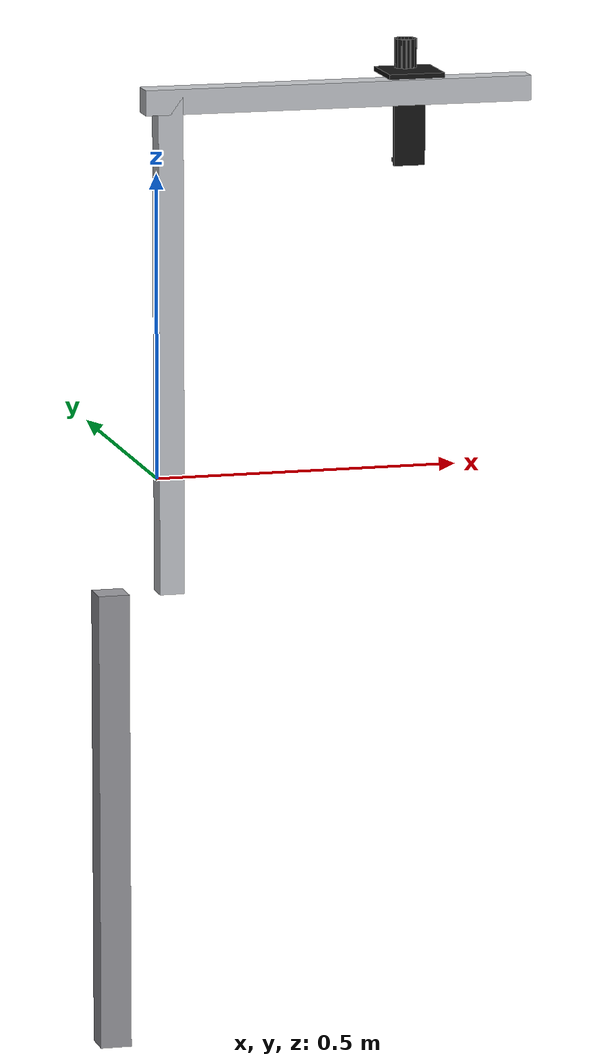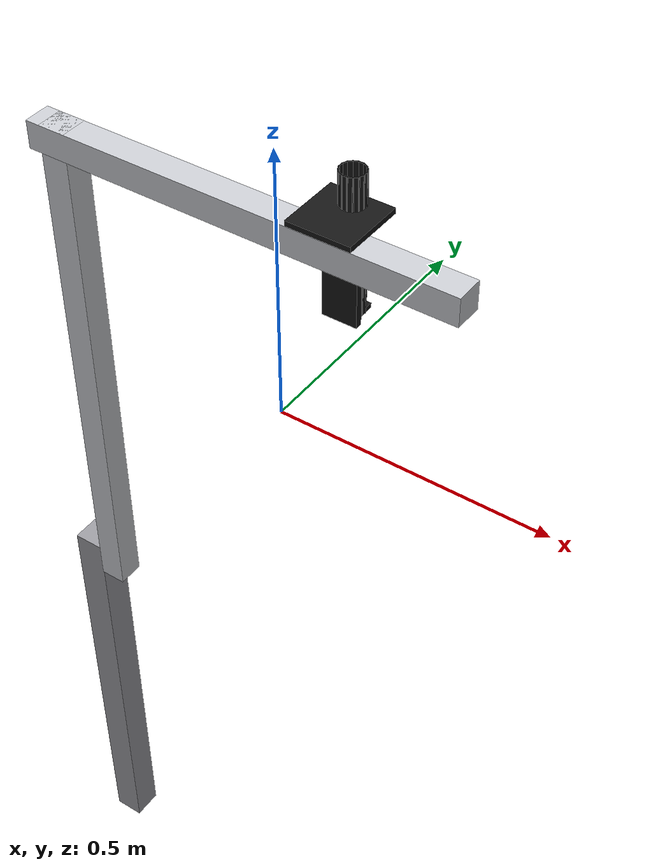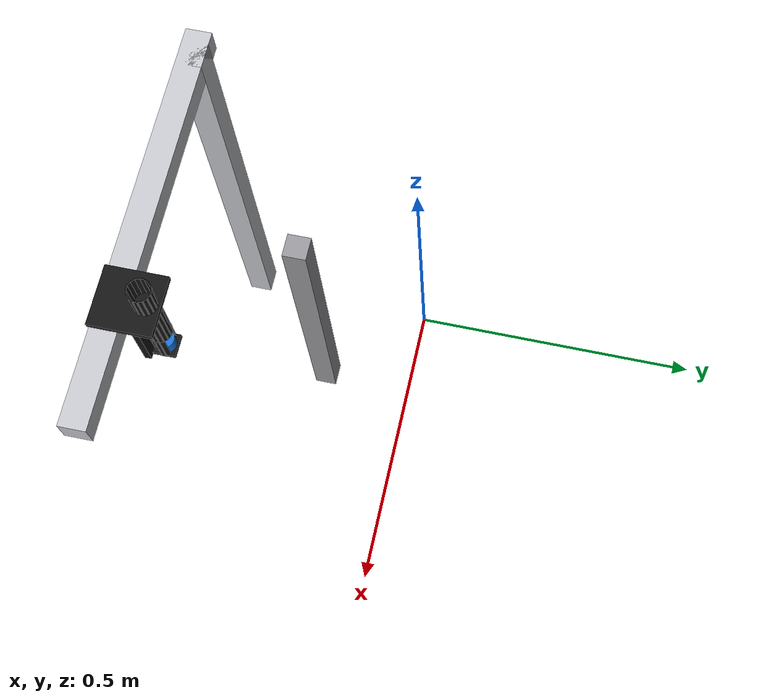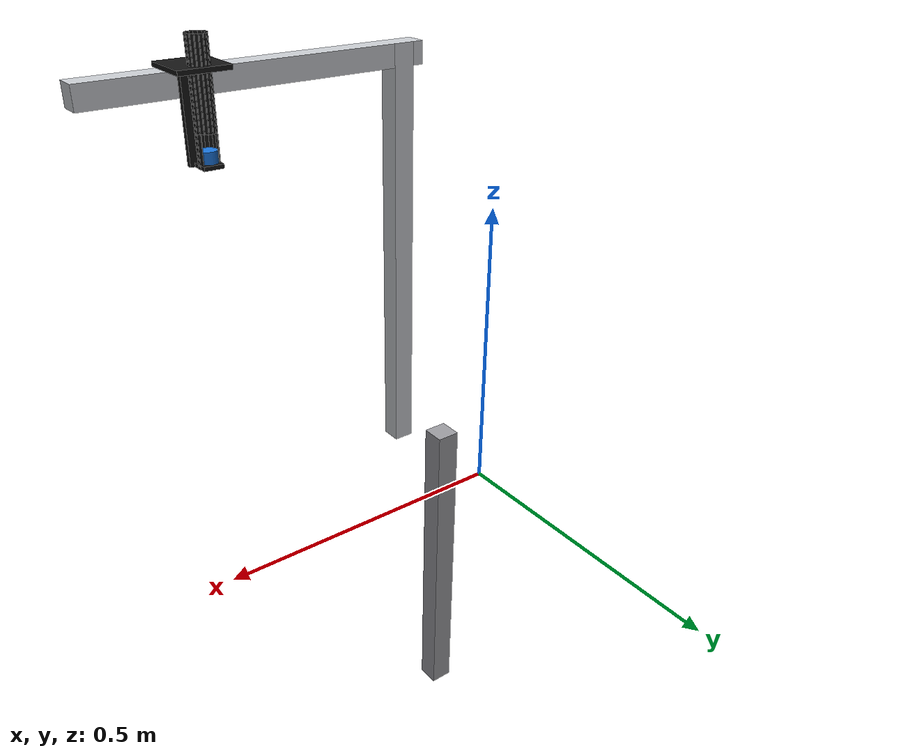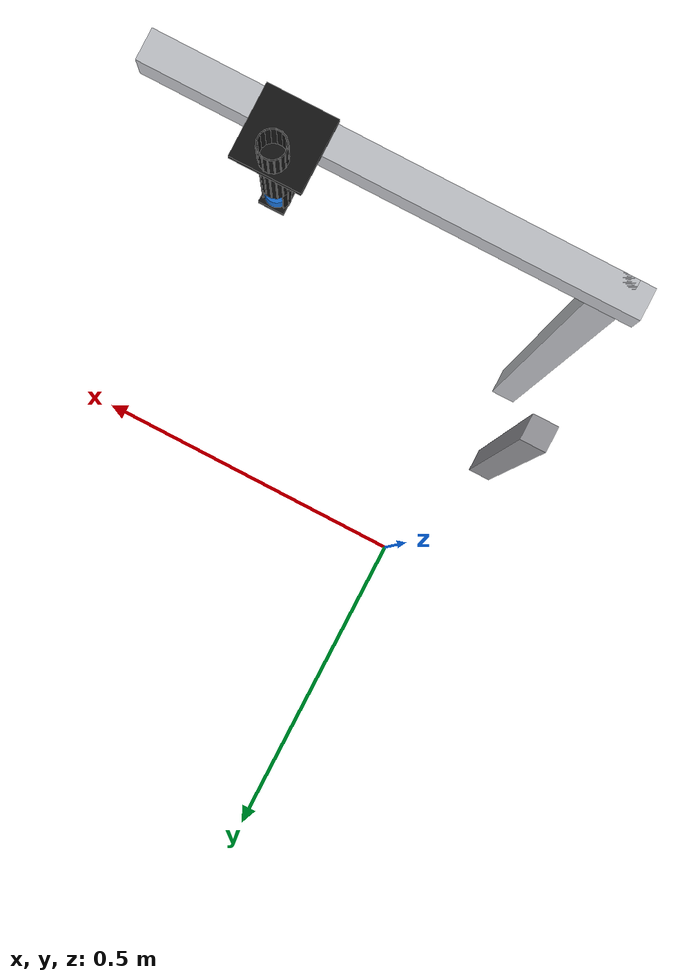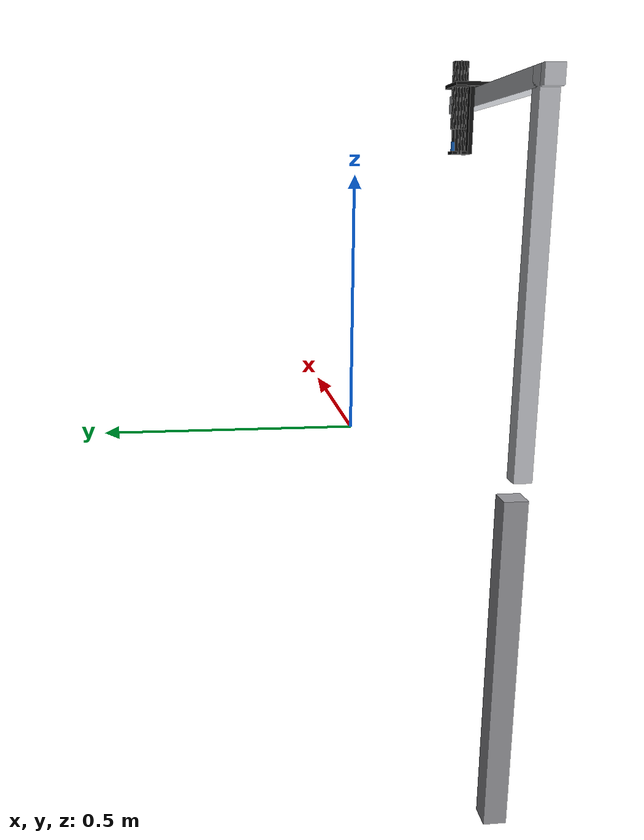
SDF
<sdf version="1.6">
 <world name="lwa4p_lab">
  <model name="table_leg0">
   <static>true</static>
   <pose>-0.15 -0.3 -0.486 0 0 0.0</pose>
   <link name="l">
    <collision name="c"><geometry><box><size>0.05 0.05 0.74</size></box></geometry></collision>
    <visual name="v">
     <geometry><box><size>0.05 0.05 0.74</size></box></geometry>
     <material>
      <ambient>0.6 0.6 0.62 1.0</ambient>
      <diffuse>0.6 0.6 0.62 1.0</diffuse>
      <specular>0.2 0.2 0.2 1</specular>
     </material>
    </visual>
   </link>
  </model>
  <model name="tprofile_top_bar">
   <static>true</static>
   <pose>0.2075 -0.345 0.675 0 0 0.0</pose>
   <link name="l">
    <collision name="c"><geometry><box><size>0.625 0.04 0.04</size></box></geometry></collision>
    <visual name="v">
     <geometry><box><size>0.625 0.04 0.04</size></box></geometry>
     <material>
      <ambient>0.78 0.79 0.81 1.0</ambient>
      <diffuse>0.78 0.79 0.81 1.0</diffuse>
      <specular>0.2 0.2 0.2 1</specular>
     </material>
    </visual>
   </link>
  </model>
  <model name="tprofile_post_minus_x">
   <static>true</static>
   <pose>-0.065 -0.345 0.2925 0 0 0.0</pose>
   <link name="l">
    <collision name="c"><geometry><box><size>0.04 0.04 0.805</size></box></geometry></collision>
    <visual name="v">
     <geometry><box><size>0.04 0.04 0.805</size></box></geometry>
     <material>
      <ambient>0.78 0.79 0.81 1.0</ambient>
      <diffuse>0.78 0.79 0.81 1.0</diffuse>
      <specular>0.2 0.2 0.2 1</specular>
     </material>
    </visual>
   </link>
  </model>
  <model name="cap_dispenser_tube">
   <static>true</static>
   <pose>0.333 -0.296 0.679 0 0 0</pose>
   <link name="l">
    <collision name="w0">
     <pose>0.01675 0.00000 0 0 0 1.57080</pose>
     <geometry><box><size>0.00866 0.0015 0.144</size></box></geometry>
    </collision>
    <visual name="w0">
     <pose>0.01675 0.00000 0 0 0 1.57080</pose>
     <geometry><box><size>0.00866 0.0015 0.144</size></box></geometry>
     <material>
      <ambient>0.08 0.08 0.08 1.0</ambient>
      <diffuse>0.08 0.08 0.08 1.0</diffuse>
      <specular>0.2 0.2 0.2 1</specular>
     </material>
    </visual>
    <collision name="w1">
     <pose>0.01547 0.00641 0 0 0 1.96350</pose>
     <geometry><box><size>0.00866 0.0015 0.144</size></box></geometry>
    </collision>
    <visual name="w1">
     <pose>0.01547 0.00641 0 0 0 1.96350</pose>
     <geometry><box><size>0.00866 0.0015 0.144</size></box></geometry>
     <material>
      <ambient>0.08 0.08 0.08 1.0</ambient>
      <diffuse>0.08 0.08 0.08 1.0</diffuse>
      <specular>0.2 0.2 0.2 1</specular>
     </material>
    </visual>
    <collision name="w2">
     <pose>0.01184 0.01184 0 0 0 2.35619</pose>
     <geometry><box><size>0.00866 0.0015 0.144</size></box></geometry>
    </collision>
    <visual name="w2">
     <pose>0.01184 0.01184 0 0 0 2.35619</pose>
     <geometry><box><size>0.00866 0.0015 0.144</size></box></geometry>
     <material>
      <ambient>0.08 0.08 0.08 1.0</ambient>
      <diffuse>0.08 0.08 0.08 1.0</diffuse>
      <specular>0.2 0.2 0.2 1</specular>
     </material>
    </visual>
    <collision name="w3">
     <pose>0.00641 0.01547 0 0 0 2.74889</pose>
     <geometry><box><size>0.00866 0.0015 0.144</size></box></geometry>
    </collision>
    <visual name="w3">
     <pose>0.00641 0.01547 0 0 0 2.74889</pose>
     <geometry><box><size>0.00866 0.0015 0.144</size></box></geometry>
     <material>
      <ambient>0.08 0.08 0.08 1.0</ambient>
      <diffuse>0.08 0.08 0.08 1.0</diffuse>
      <specular>0.2 0.2 0.2 1</specular>
     </material>
    </visual>
    <collision name="w4">
     <pose>0.00000 0.01675 0 0 0 3.14159</pose>
     <geometry><box><size>0.00866 0.0015 0.144</size></box></geometry>
    </collision>
    <visual name="w4">
     <pose>0.00000 0.01675 0 0 0 3.14159</pose>
     <geometry><box><size>0.00866 0.0015 0.144</size></box></geometry>
     <material>
      <ambient>0.08 0.08 0.08 1.0</ambient>
      <diffuse>0.08 0.08 0.08 1.0</diffuse>
      <specular>0.2 0.2 0.2 1</specular>
     </material>
    </visual>
    <collision name="w5">
     <pose>-0.00641 0.01547 0 0 0 3.53429</pose>
     <geometry><box><size>0.00866 0.0015 0.144</size></box></geometry>
    </collision>
    <visual name="w5">
     <pose>-0.00641 0.01547 0 0 0 3.53429</pose>
     <geometry><box><size>0.00866 0.0015 0.144</size></box></geometry>
     <material>
      <ambient>0.08 0.08 0.08 1.0</ambient>
      <diffuse>0.08 0.08 0.08 1.0</diffuse>
      <specular>0.2 0.2 0.2 1</specular>
     </material>
    </visual>
    <collision name="w6">
     <pose>-0.01184 0.01184 0 0 0 3.92699</pose>
     <geometry><box><size>0.00866 0.0015 0.144</size></box></geometry>
    </collision>
    <visual name="w6">
     <pose>-0.01184 0.01184 0 0 0 3.92699</pose>
     <geometry><box><size>0.00866 0.0015 0.144</size></box></geometry>
     <material>
      <ambient>0.08 0.08 0.08 1.0</ambient>
      <diffuse>0.08 0.08 0.08 1.0</diffuse>
      <specular>0.2 0.2 0.2 1</specular>
     </material>
    </visual>
    <collision name="w7">
     <pose>-0.01547 0.00641 0 0 0 4.31969</pose>
     <geometry><box><size>0.00866 0.0015 0.144</size></box></geometry>
    </collision>
    <visual name="w7">
     <pose>-0.01547 0.00641 0 0 0 4.31969</pose>
     <geometry><box><size>0.00866 0.0015 0.144</size></box></geometry>
     <material>
      <ambient>0.08 0.08 0.08 1.0</ambient>
      <diffuse>0.08 0.08 0.08 1.0</diffuse>
      <specular>0.2 0.2 0.2 1</specular>
     </material>
    </visual>
    <collision name="w8">
     <pose>-0.01675 0.00000 0 0 0 4.71239</pose>
     <geometry><box><size>0.00866 0.0015 0.144</size></box></geometry>
    </collision>
    <visual name="w8">
     <pose>-0.01675 0.00000 0 0 0 4.71239</pose>
     <geometry><box><size>0.00866 0.0015 0.144</size></box></geometry>
     <material>
      <ambient>0.08 0.08 0.08 1.0</ambient>
      <diffuse>0.08 0.08 0.08 1.0</diffuse>
      <specular>0.2 0.2 0.2 1</specular>
     </material>
    </visual>
    <collision name="w9">
     <pose>-0.01547 -0.00641 0 0 0 5.10509</pose>
     <geometry><box><size>0.00866 0.0015 0.144</size></box></geometry>
    </collision>
    <visual name="w9">
     <pose>-0.01547 -0.00641 0 0 0 5.10509</pose>
     <geometry><box><size>0.00866 0.0015 0.144</size></box></geometry>
     <material>
      <ambient>0.08 0.08 0.08 1.0</ambient>
      <diffuse>0.08 0.08 0.08 1.0</diffuse>
      <specular>0.2 0.2 0.2 1</specular>
     </material>
    </visual>
    <collision name="w10">
     <pose>-0.01184 -0.01184 0 0 0 5.49779</pose>
     <geometry><box><size>0.00866 0.0015 0.144</size></box></geometry>
    </collision>
    <visual name="w10">
     <pose>-0.01184 -0.01184 0 0 0 5.49779</pose>
     <geometry><box><size>0.00866 0.0015 0.144</size></box></geometry>
     <material>
      <ambient>0.08 0.08 0.08 1.0</ambient>
      <diffuse>0.08 0.08 0.08 1.0</diffuse>
      <specular>0.2 0.2 0.2 1</specular>
     </material>
    </visual>
    <collision name="w11">
     <pose>-0.00641 -0.01547 0 0 0 5.89049</pose>
     <geometry><box><size>0.00866 0.0015 0.144</size></box></geometry>
    </collision>
    <visual name="w11">
     <pose>-0.00641 -0.01547 0 0 0 5.89049</pose>
     <geometry><box><size>0.00866 0.0015 0.144</size></box></geometry>
     <material>
      <ambient>0.08 0.08 0.08 1.0</ambient>
      <diffuse>0.08 0.08 0.08 1.0</diffuse>
      <specular>0.2 0.2 0.2 1</specular>
     </material>
    </visual>
    <collision name="w12">
     <pose>-0.00000 -0.01675 0 0 0 6.28319</pose>
     <geometry><box><size>0.00866 0.0015 0.144</size></box></geometry>
    </collision>
    <visual name="w12">
     <pose>-0.00000 -0.01675 0 0 0 6.28319</pose>
     <geometry><box><size>0.00866 0.0015 0.144</size></box></geometry>
     <material>
      <ambient>0.08 0.08 0.08 1.0</ambient>
      <diffuse>0.08 0.08 0.08 1.0</diffuse>
      <specular>0.2 0.2 0.2 1</specular>
     </material>
    </visual>
    <collision name="w13">
     <pose>0.00641 -0.01547 0 0 0 6.67588</pose>
     <geometry><box><size>0.00866 0.0015 0.144</size></box></geometry>
    </collision>
    <visual name="w13">
     <pose>0.00641 -0.01547 0 0 0 6.67588</pose>
     <geometry><box><size>0.00866 0.0015 0.144</size></box></geometry>
     <material>
      <ambient>0.08 0.08 0.08 1.0</ambient>
      <diffuse>0.08 0.08 0.08 1.0</diffuse>
      <specular>0.2 0.2 0.2 1</specular>
     </material>
    </visual>
    <collision name="w14">
     <pose>0.01184 -0.01184 0 0 0 7.06858</pose>
     <geometry><box><size>0.00866 0.0015 0.144</size></box></geometry>
    </collision>
    <visual name="w14">
     <pose>0.01184 -0.01184 0 0 0 7.06858</pose>
     <geometry><box><size>0.00866 0.0015 0.144</size></box></geometry>
     <material>
      <ambient>0.08 0.08 0.08 1.0</ambient>
      <diffuse>0.08 0.08 0.08 1.0</diffuse>
      <specular>0.2 0.2 0.2 1</specular>
     </material>
    </visual>
    <collision name="w15">
     <pose>0.01547 -0.00641 0 0 0 7.46128</pose>
     <geometry><box><size>0.00866 0.0015 0.144</size></box></geometry>
    </collision>
    <visual name="w15">
     <pose>0.01547 -0.00641 0 0 0 7.46128</pose>
     <geometry><box><size>0.00866 0.0015 0.144</size></box></geometry>
     <material>
      <ambient>0.08 0.08 0.08 1.0</ambient>
      <diffuse>0.08 0.08 0.08 1.0</diffuse>
      <specular>0.2 0.2 0.2 1</specular>
     </material>
    </visual>
    <collision name="l0">
     <pose>0.01675 0.00000 -0.09950 0 0 1.57080</pose>
     <geometry><box><size>0.00866 0.0015 0.0550</size></box></geometry>
    </collision>
    <visual name="l0">
     <pose>0.01675 0.00000 -0.09950 0 0 1.57080</pose>
     <geometry><box><size>0.00866 0.0015 0.0550</size></box></geometry>
     <material>
      <ambient>0.08 0.08 0.08 1.0</ambient>
      <diffuse>0.08 0.08 0.08 1.0</diffuse>
      <specular>0.2 0.2 0.2 1</specular>
     </material>
    </visual>
    <collision name="l1">
     <pose>0.01547 0.00641 -0.09950 0 0 1.96350</pose>
     <geometry><box><size>0.00866 0.0015 0.0550</size></box></geometry>
    </collision>
    <visual name="l1">
     <pose>0.01547 0.00641 -0.09950 0 0 1.96350</pose>
     <geometry><box><size>0.00866 0.0015 0.0550</size></box></geometry>
     <material>
      <ambient>0.08 0.08 0.08 1.0</ambient>
      <diffuse>0.08 0.08 0.08 1.0</diffuse>
      <specular>0.2 0.2 0.2 1</specular>
     </material>
    </visual>
    <collision name="l7">
     <pose>-0.01547 0.00641 -0.09950 0 0 4.31969</pose>
     <geometry><box><size>0.00866 0.0015 0.0550</size></box></geometry>
    </collision>
    <visual name="l7">
     <pose>-0.01547 0.00641 -0.09950 0 0 4.31969</pose>
     <geometry><box><size>0.00866 0.0015 0.0550</size></box></geometry>
     <material>
      <ambient>0.08 0.08 0.08 1.0</ambient>
      <diffuse>0.08 0.08 0.08 1.0</diffuse>
      <specular>0.2 0.2 0.2 1</specular>
     </material>
    </visual>
    <collision name="l8">
     <pose>-0.01675 0.00000 -0.09950 0 0 4.71239</pose>
     <geometry><box><size>0.00866 0.0015 0.0550</size></box></geometry>
    </collision>
    <visual name="l8">
     <pose>-0.01675 0.00000 -0.09950 0 0 4.71239</pose>
     <geometry><box><size>0.00866 0.0015 0.0550</size></box></geometry>
     <material>
      <ambient>0.08 0.08 0.08 1.0</ambient>
      <diffuse>0.08 0.08 0.08 1.0</diffuse>
      <specular>0.2 0.2 0.2 1</specular>
     </material>
    </visual>
    <collision name="l9">
     <pose>-0.01547 -0.00641 -0.09950 0 0 5.10509</pose>
     <geometry><box><size>0.00866 0.0015 0.0550</size></box></geometry>
    </collision>
    <visual name="l9">
     <pose>-0.01547 -0.00641 -0.09950 0 0 5.10509</pose>
     <geometry><box><size>0.00866 0.0015 0.0550</size></box></geometry>
     <material>
      <ambient>0.08 0.08 0.08 1.0</ambient>
      <diffuse>0.08 0.08 0.08 1.0</diffuse>
      <specular>0.2 0.2 0.2 1</specular>
     </material>
    </visual>
    <collision name="l10">
     <pose>-0.01184 -0.01184 -0.09950 0 0 5.49779</pose>
     <geometry><box><size>0.00866 0.0015 0.0550</size></box></geometry>
    </collision>
    <visual name="l10">
     <pose>-0.01184 -0.01184 -0.09950 0 0 5.49779</pose>
     <geometry><box><size>0.00866 0.0015 0.0550</size></box></geometry>
     <material>
      <ambient>0.08 0.08 0.08 1.0</ambient>
      <diffuse>0.08 0.08 0.08 1.0</diffuse>
      <specular>0.2 0.2 0.2 1</specular>
     </material>
    </visual>
    <collision name="l11">
     <pose>-0.00641 -0.01547 -0.09950 0 0 5.89049</pose>
     <geometry><box><size>0.00866 0.0015 0.0550</size></box></geometry>
    </collision>
    <visual name="l11">
     <pose>-0.00641 -0.01547 -0.09950 0 0 5.89049</pose>
     <geometry><box><size>0.00866 0.0015 0.0550</size></box></geometry>
     <material>
      <ambient>0.08 0.08 0.08 1.0</ambient>
      <diffuse>0.08 0.08 0.08 1.0</diffuse>
      <specular>0.2 0.2 0.2 1</specular>
     </material>
    </visual>
    <collision name="l12">
     <pose>-0.00000 -0.01675 -0.09950 0 0 6.28319</pose>
     <geometry><box><size>0.00866 0.0015 0.0550</size></box></geometry>
    </collision>
    <visual name="l12">
     <pose>-0.00000 -0.01675 -0.09950 0 0 6.28319</pose>
     <geometry><box><size>0.00866 0.0015 0.0550</size></box></geometry>
     <material>
      <ambient>0.08 0.08 0.08 1.0</ambient>
      <diffuse>0.08 0.08 0.08 1.0</diffuse>
      <specular>0.2 0.2 0.2 1</specular>
     </material>
    </visual>
    <collision name="l13">
     <pose>0.00641 -0.01547 -0.09950 0 0 6.67588</pose>
     <geometry><box><size>0.00866 0.0015 0.0550</size></box></geometry>
    </collision>
    <visual name="l13">
     <pose>0.00641 -0.01547 -0.09950 0 0 6.67588</pose>
     <geometry><box><size>0.00866 0.0015 0.0550</size></box></geometry>
     <material>
      <ambient>0.08 0.08 0.08 1.0</ambient>
      <diffuse>0.08 0.08 0.08 1.0</diffuse>
      <specular>0.2 0.2 0.2 1</specular>
     </material>
    </visual>
    <collision name="l14">
     <pose>0.01184 -0.01184 -0.09950 0 0 7.06858</pose>
     <geometry><box><size>0.00866 0.0015 0.0550</size></box></geometry>
    </collision>
    <visual name="l14">
     <pose>0.01184 -0.01184 -0.09950 0 0 7.06858</pose>
     <geometry><box><size>0.00866 0.0015 0.0550</size></box></geometry>
     <material>
      <ambient>0.08 0.08 0.08 1.0</ambient>
      <diffuse>0.08 0.08 0.08 1.0</diffuse>
      <specular>0.2 0.2 0.2 1</specular>
     </material>
    </visual>
    <collision name="l15">
     <pose>0.01547 -0.00641 -0.09950 0 0 7.46128</pose>
     <geometry><box><size>0.00866 0.0015 0.0550</size></box></geometry>
    </collision>
    <visual name="l15">
     <pose>0.01547 -0.00641 -0.09950 0 0 7.46128</pose>
     <geometry><box><size>0.00866 0.0015 0.0550</size></box></geometry>
     <material>
      <ambient>0.08 0.08 0.08 1.0</ambient>
      <diffuse>0.08 0.08 0.08 1.0</diffuse>
      <specular>0.2 0.2 0.2 1</specular>
     </material>
    </visual>
   </link>
  </model>
  <model name="cap_dispenser_bracket">
   <static>true</static>
   <pose>0.333 -0.318 0.6245 0 0 0.0</pose>
   <link name="l">
    <collision name="c"><geometry><box><size>0.05 0.010 0.145</size></box></geometry></collision>
    <visual name="v">
     <geometry><box><size>0.05 0.010 0.145</size></box></geometry>
     <material>
      <ambient>0.08 0.08 0.08 1.0</ambient>
      <diffuse>0.08 0.08 0.08 1.0</diffuse>
      <specular>0.2 0.2 0.2 1</specular>
     </material>
    </visual>
   </link>
  </model>
  <model name="cap_dispenser_clamp">
   <static>true</static>
   <pose>0.333 -0.321 0.701 0 0 0.0</pose>
   <link name="l">
    <collision name="c"><geometry><box><size>0.09 0.092 0.008</size></box></geometry></collision>
    <visual name="v">
     <geometry><box><size>0.09 0.092 0.008</size></box></geometry>
     <material>
      <ambient>0.08 0.08 0.08 1.0</ambient>
      <diffuse>0.08 0.08 0.08 1.0</diffuse>
      <specular>0.2 0.2 0.2 1</specular>
     </material>
    </visual>
   </link>
  </model>
  <model name="cap_dispenser_stop">
   <static>true</static>
   <pose>0.333 -0.296 0.5555 0 0 0.0</pose>
   <link name="l">
    <collision name="c"><geometry><box><size>0.034 0.034 0.007</size></box></geometry></collision>
    <visual name="v">
     <geometry><box><size>0.034 0.034 0.007</size></box></geometry>
     <material>
      <ambient>0.08 0.08 0.08 1.0</ambient>
      <diffuse>0.08 0.08 0.08 1.0</diffuse>
      <specular>0.2 0.2 0.2 1</specular>
     </material>
    </visual>
   </link>
  </model>
  <model name="blue_cap_1">
   <pose>0.333 -0.296 0.5695 0 0 0</pose>
   <link name="l">
    <inertial><mass>0.004</mass><inertia><ixx>1.1e-6</ixx><iyy>1.1e-6</iyy><izz>1.0e-6</izz></inertia></inertial>
    <collision name="c">
     <geometry><cylinder><radius>0.015</radius><length>0.020</length></cylinder></geometry>
     <surface><friction><ode><mu>0.8</mu><mu2>0.8</mu2></ode></friction></surface>
    </collision>
    <visual name="v">
     <geometry><cylinder><radius>0.015</radius><length>0.020</length></cylinder></geometry>
     <material>
      <ambient>0.10 0.45 0.85 1.0</ambient>
      <diffuse>0.10 0.45 0.85 1.0</diffuse>
      <specular>0.2 0.2 0.2 1</specular>
     </material>
    </visual>
   </link>
  </model>
  <model name="rack_support_3">
   <static>true</static>
   <pose>0.315 -0.064 -0.0245 0 0 0</pose>
   <link name="l">
    <collision name="c">
     <geometry><box><size>0.030 0.030 0.010</size></box></geometry>
     <surface><contact><collide_bitmask>2</collide_bitmask></contact></surface>
    </collision>
   </link>
  </model>
 </world>
</sdf>
